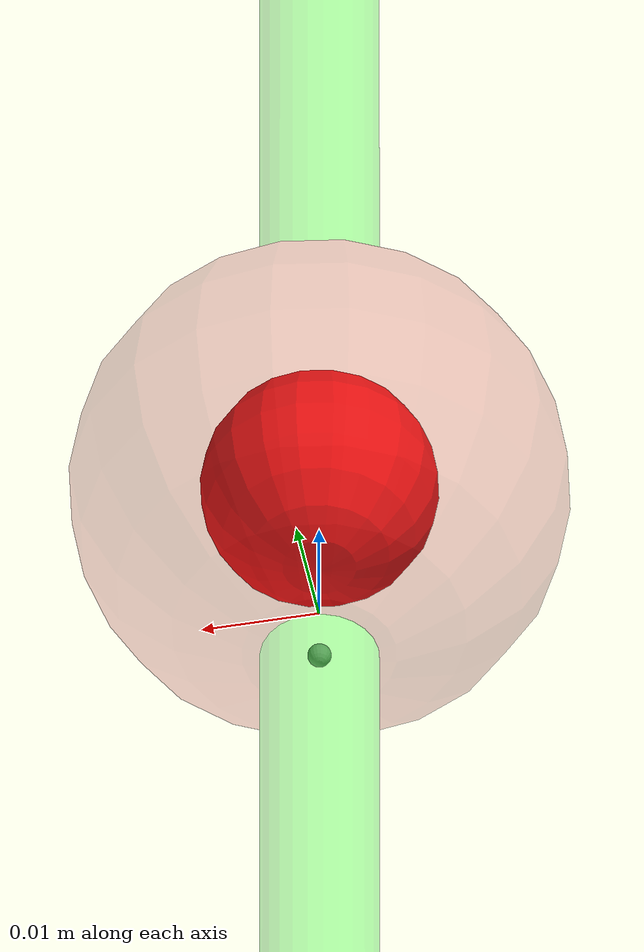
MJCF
<?xml version="1.0" encoding="UTF-8"?>
<mujoco model="sphere_hand">
    <worldbody>
        <body name="sphere_gripper" pos="0 0 0.015" quat="0.707107 0 0 -0.707107">
            <!-- Force/Torque sensor frame site -->
            <site name="ft_frame" pos="0 0 0" size="0.01 0.01 0.01" rgba="1 0 0 1" type="sphere" group="1"/>
            <inertial pos="0 0 0" mass="3e-2" diaginertia="1e-2 1e-2 1e-2"/>

            <!-- Main sphere -->
            <geom type="sphere" pos="0 0 0" size="0.02" name="sphere_visual" contype="0" conaffinity="0" group="1" rgba="0.3 0.3 0.8 0.6"/>
            <geom type="sphere" pos="0 0 0" size="0.021" name="sphere_collision" group="0" solimp="0.0 0.9 0.02" solref="0.05 1" solmix="10000" rgba="0.8 0.3 0.3 0.3" friction="0.4 0.005 0.0001"/>

            <!-- Contact detection geom at the bottom of the sphere -->
            <geom type="sphere" pos="0 0 -0.02" size="0.001" name="sphere_contact" group="0" rgba="0 1 0 0.3" solimp="0.0 0.1 0.01" solmix="10000" solref="1 2" friction="0.001 0.005 0.0001"/>
            <!-- Site for touch sensor -->
            <site type="sphere" pos="0 0 -0.02" size="0.001" name="sphere_contact_site"/>

            <!-- End effector frame -->
            <body name="eef" pos="0 0 0" quat="1 0 0 0">
                <site name="grip_site" pos="0 0 0" size="0.01 0.01 0.01" rgba="1 0 0 0.5" type="sphere" group="1"/>
                <site name="ee_x" pos="0.1 0 0" size="0.005 .1" quat="0.707105 0 0.707108 0" rgba="1 0 0 0" type="cylinder" group="1"/>
                <site name="ee_y" pos="0 0.1 0" size="0.005 .1" quat="0.707105 0.707108 0 0" rgba="0 1 0 0" type="cylinder" group="1"/>
                <site name="ee_z" pos="0 0 0.1" size="0.005 .1" quat="1 0 0 0" rgba="0 0 1 0" type="cylinder" group="1"/>
                <site name="grip_site_cylinder" pos="0 0 0" size="0.005 10" rgba="0 1 0 0.3" type="cylinder" group="1"/>
            </body>
        </body>
    </worldbody>
    <sensor>
        <force name="force_ee" site="ft_frame"/>
        <torque name="torque_ee" site="ft_frame"/>
        <touch name="touch" site="sphere_contact_site"/>
    </sensor>
</mujoco>
